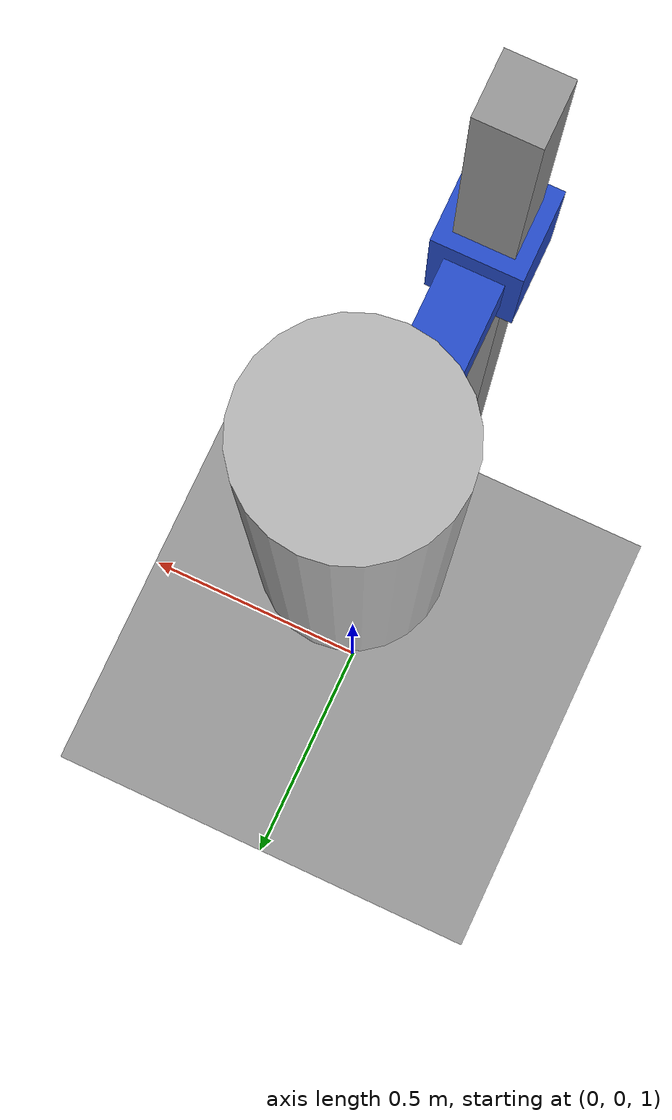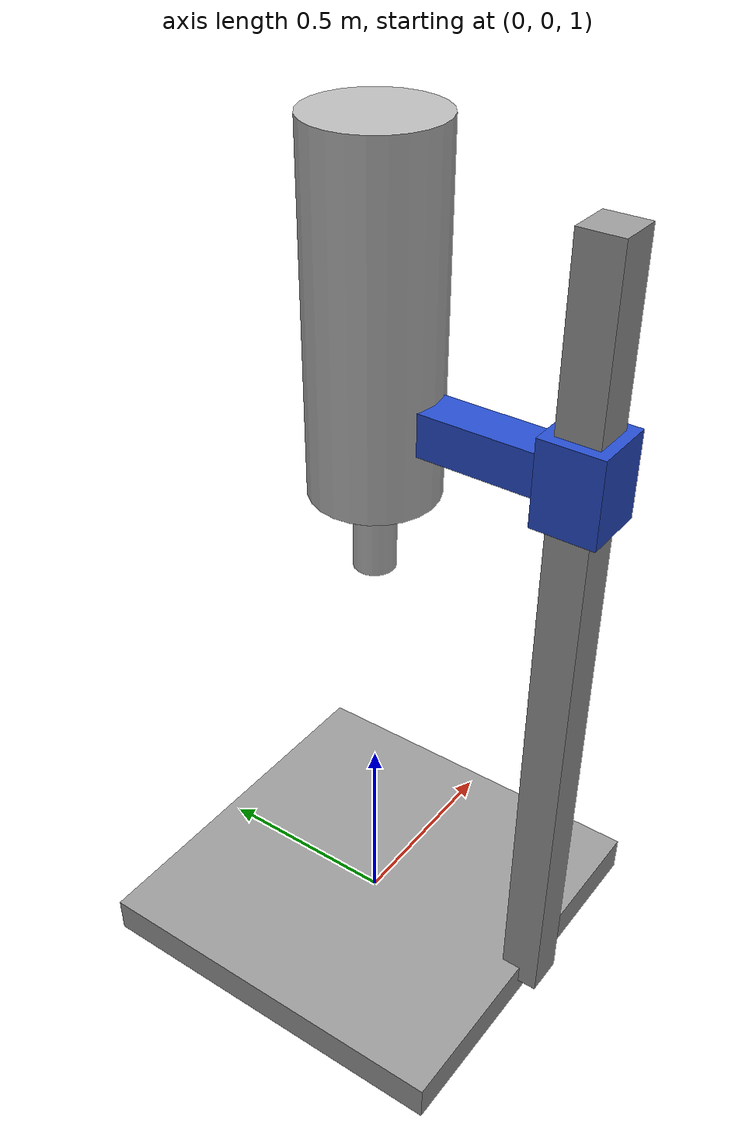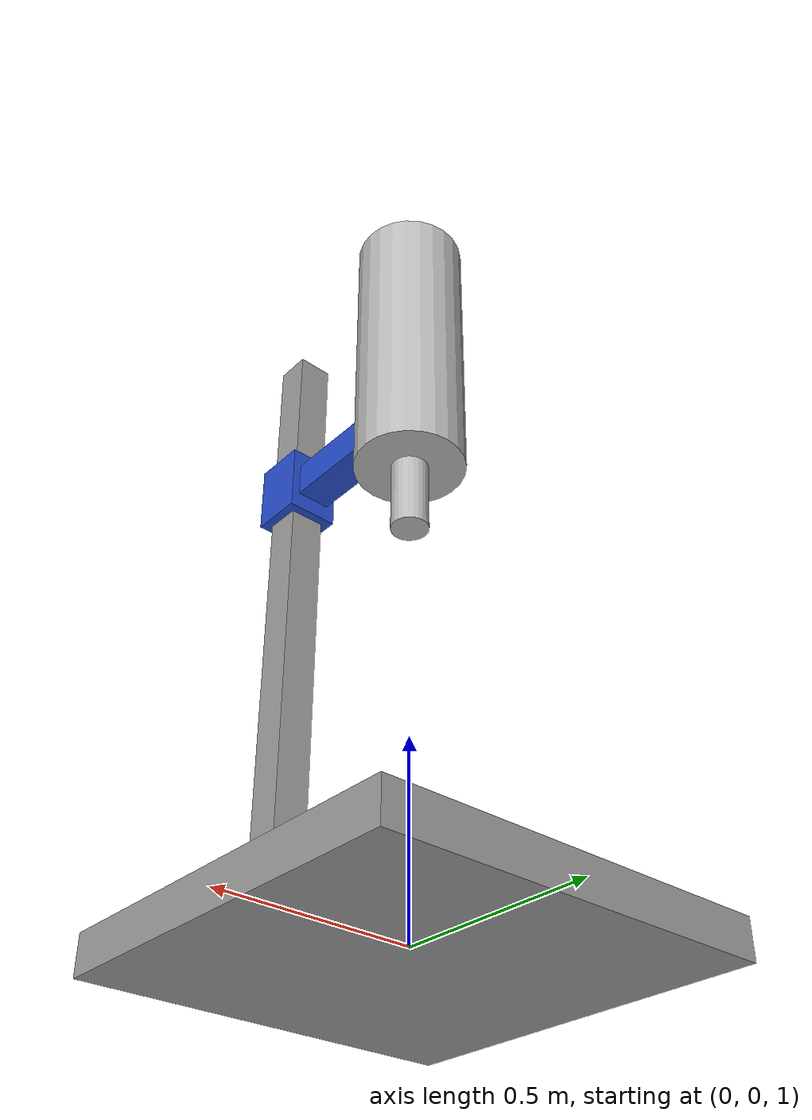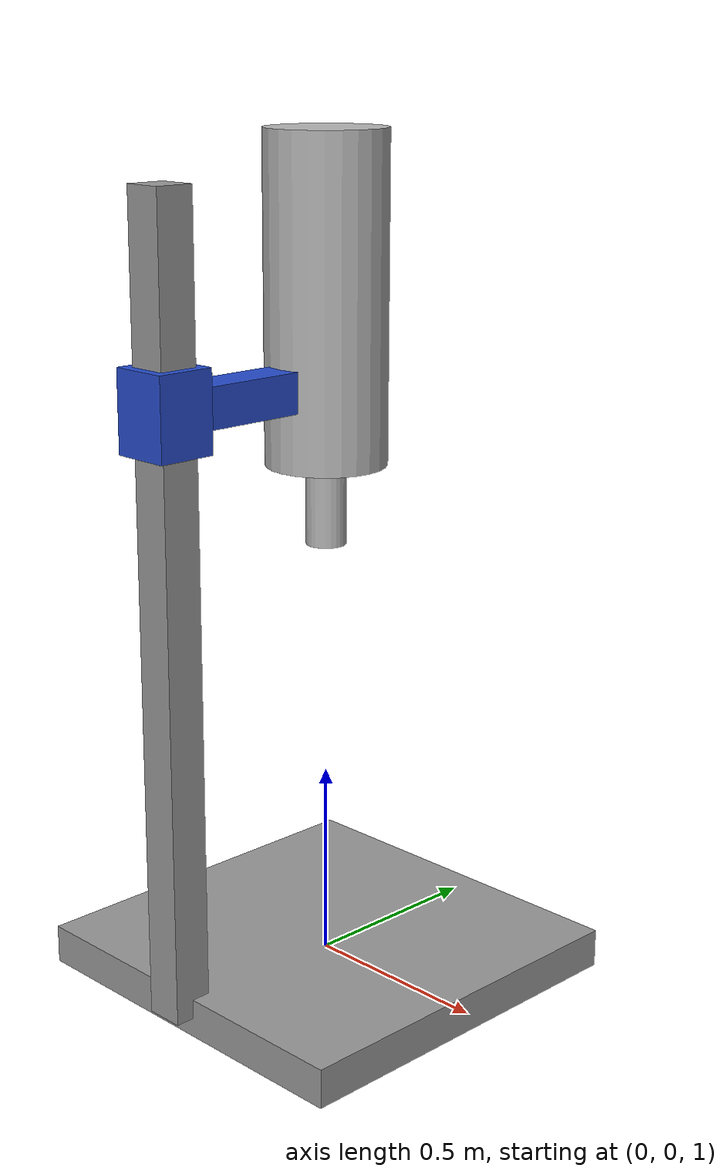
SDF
<sdf version='1.7'>
  <model name='rocket'>
    <link name='base_station'>
      <inertial>
        <pose>0 0 0 0 -0 0</pose>
        <mass>5000</mass>
        <inertia>
          <ixx>421.708</ixx>
          <ixy>0</ixy>
          <ixz>0</ixz>
          <iyy>421.708</iyy>
          <iyz>0</iyz>
          <izz>833.333</izz>
        </inertia>
      </inertial>
      <collision name='base_station_collision'>
        <pose>0 0 0 0 -0 0</pose>
        <geometry>
          <box>
            <size>1 1 0.01</size>
          </box>
        </geometry>
        <surface>
          <contact>
            <ode/>
          </contact>
          <friction>
            <ode/>
          </friction>
        </surface>
      </collision>
      <visual name='base_station_visual'>
        <pose>0 0 0 0 -0 0</pose>
        <geometry>
          <box>
            <size>1 1 0.1</size>
          </box>
        </geometry>
        <material>
          <script>
            <name>Gazebo/Grey</name>
            <uri>file://media/materials/scripts/gazebo.material</uri>
          </script>
        </material>
      </visual>
      <visual name='base_station_visual_1'>
        <pose>0 -0.5 1 0 -0 0</pose>
        <geometry>
          <box>
            <size>0.1 0.1 2</size>
          </box>
        </geometry>
        <material>
          <script>
            <name>Gazebo/Grey</name>
            <uri>file://media/materials/scripts/gazebo.material</uri>
          </script>
        </material>
      </visual>
    </link>
    <joint name='moving_station_joint' type='prismatic'>
      <pose relative_to='base_station'>0 -0.5 1.5 0 -0 0</pose>
      <parent>base_station</parent>
      <child>moving_station</child>
      <axis>
        <xyz>0 0 1</xyz>
        <limit>
          <lower>-0.5</lower>
          <upper>0.5</upper>
          <effort>3000</effort>
          <velocity>1</velocity>
        </limit>
        <dynamics>
          <damping>0.01</damping>
          <friction>0.01</friction>
          <spring_reference>0</spring_reference>
          <spring_stiffness>0</spring_stiffness>
        </dynamics>
      </axis>
    </joint>
    <link name='moving_station'>
      <pose relative_to='moving_station_joint'>0 0 0 0 -0 0</pose>
      <inertial>
        <pose>0 0 0 0 -0 0</pose>
        <mass>20</mass>
        <inertia>
          <ixx>0.433333</ixx>
          <ixy>0</ixy>
          <ixz>0</ixz>
          <iyy>0.0333333</iyy>
          <iyz>0</iyz>
          <izz>0.433333</izz>
        </inertia>
      </inertial>
      <collision name='moving_station_collision'>
        <pose>0 0.25 0 0 -0 0</pose>
        <geometry>
          <box>
            <size>0.1 0.5 0.1</size>
          </box>
        </geometry>
        <surface>
          <contact>
            <ode/>
          </contact>
          <friction>
            <ode/>
          </friction>
        </surface>
      </collision>
      <visual name='moving_station_visual'>
        <pose>0 0 0 0 -0 0</pose>
        <geometry>
          <box>
            <size>0.15 0.15 0.2</size>
          </box>
        </geometry>
        <material>
          <script>
            <name>Gazebo/Blue</name>
            <uri>file://media/materials/scripts/gazebo.material</uri>
          </script>
        </material>
      </visual>
      <visual name='moving_station_visual_1'>
        <pose>0 0.25 0 0 -0 0</pose>
        <geometry>
          <box>
            <size>0.1 0.5 0.1</size>
          </box>
        </geometry>
        <material>
          <script>
            <name>Gazebo/Blue</name>
            <uri>file://media/materials/scripts/gazebo.material</uri>
          </script>
        </material>
      </visual>
    </link>
    <joint name='station_to_rocket' type='revolute'>
      <pose relative_to='moving_station'>0 0.5 0 0 -0 0</pose>
      <parent>moving_station</parent>
      <child>base_link</child>
      <axis>
        <xyz>0 1 0</xyz>
        <limit>
          <lower>-1</lower>
          <upper>1</upper>
          <effort>100000</effort>
          <velocity>5</velocity>
        </limit>
        <dynamics>
          <damping>0.03</damping>
          <friction>0.03</friction>
          <spring_reference>0</spring_reference>
          <spring_stiffness>0</spring_stiffness>
        </dynamics>
      </axis>
    </joint>
    <link name='base_link'>
      <pose relative_to='station_to_rocket'>0 0 0 0 -0 0</pose>
      <inertial>
        <pose>0 0 0 0 -0 0</pose>
        <mass>10</mass>
        <inertia>
          <ixx>0.520833</ixx>
          <ixy>0</ixy>
          <ixz>0</ixz>
          <iyy>0.520833</iyy>
          <iyz>0</iyz>
          <izz>0.104167</izz>
        </inertia>
      </inertial>
      <collision name='base_link_collision'>
        <pose>0 0 0.2 0 -0 0</pose>
        <geometry>
          <cylinder>
            <length>0.8</length>
            <radius>0.15</radius>
          </cylinder>
        </geometry>
      </collision>
      <visual name='base_link_visual'>
        <pose>0 0 0.2 0 -0 0</pose>
        <geometry>
          <cylinder>
            <length>0.8</length>
            <radius>0.15</radius>
          </cylinder>
        </geometry>
      </visual>
    </link>
    <joint name='thruster_pitch_joint' type='revolute'>
      <pose relative_to='base_link'>0 0 -0.2 0 -0 0</pose>
      <parent>base_link</parent>
      <child>yaw_link</child>
      <axis>
        <xyz>1 0 0</xyz>
        <limit>
          <lower>-0.01</lower>
          <upper>0.01</upper>
          <effort>100</effort>
          <velocity>0.5</velocity>
        </limit>
        <dynamics>
          <damping>100</damping>
          <friction>100</friction>
          <spring_reference>0</spring_reference>
          <spring_stiffness>0</spring_stiffness>
        </dynamics>
      </axis>
    </joint>
    <link name='yaw_link'>
      <pose relative_to='thruster_pitch_joint'>0 0 0 0 -0 0</pose>
      <inertial>
        <pose>0 0 0 0 -0 0</pose>
        <mass>0.3</mass>
        <inertia>
          <ixx>5e-06</ixx>
          <ixy>0</ixy>
          <ixz>0</ixz>
          <iyy>5e-06</iyy>
          <iyz>0</iyz>
          <izz>5e-06</izz>
        </inertia>
      </inertial>
      <collision name='yaw_link_collision'>
        <pose>0 0 0 0 -0 0</pose>
        <geometry>
          <box>
            <size>0.001 0.001 0.001</size>
          </box>
        </geometry>
      </collision>
      <visual name='yaw_link_visual'>
        <pose>0 0 0 0 -0 0</pose>
        <geometry>
          <box>
            <size>0.01 0.01 0.01</size>
          </box>
        </geometry>
      </visual>
    </link>
    <joint name='thruster_yaw_joint' type='revolute'>
      <pose relative_to='yaw_link'>0 0 0 0 -0 0</pose>
      <parent>yaw_link</parent>
      <child>thruster</child>
      <axis>
        <xyz>0 1 0</xyz>
        <limit>
          <lower>-2</lower>
          <upper>2</upper>
          <effort>10000</effort>
          <velocity>5</velocity>
        </limit>
        <dynamics>
          <damping>0.5</damping>
          <friction>0.5</friction>
          <spring_reference>0</spring_reference>
          <spring_stiffness>0</spring_stiffness>
        </dynamics>
      </axis>
    </joint>
    <link name='thruster'>
      <pose relative_to='thruster_yaw_joint'>0 0 0 0 -0 0</pose>
      <inertial>
        <pose>0 0 0 0 -0 0</pose>
        <mass>0.3</mass>
        <inertia>
          <ixx>5e-06</ixx>
          <ixy>0</ixy>
          <ixz>0</ixz>
          <iyy>5e-06</iyy>
          <iyz>0</iyz>
          <izz>5e-06</izz>
        </inertia>
      </inertial>
      <collision name='thruster_collision'>
        <pose>0 0 -0.1 0 -0 0</pose>
        <geometry>
          <cylinder>
            <length>0.2</length>
            <radius>0.05</radius>
          </cylinder>
        </geometry>
      </collision>
      <visual name='thruster_visual'>
        <pose>0 0 -0.1 0 -0 0</pose>
        <geometry>
          <cylinder>
            <length>0.2</length>
            <radius>0.05</radius>
          </cylinder>
        </geometry>
      </visual>
    </link>
    <plugin name='force_plugin' filename='libforce_plugin.so'/>
    <plugin name='imu_plugin' filename='libgazebo_ros_imu.so'>
      <alwaysOn>1</alwaysOn>
      <bodyName>base_link</bodyName>
      <topicName>imu</topicName>
      <serviceName>imu_service</serviceName>
      <gaussianNoise>0.0</gaussianNoise>
      <updateRate>20.0</updateRate>
    </plugin>
    <plugin name='gazebo_ros_control' filename='libgazebo_ros_control.so'>
      <robotNamespace>/rocket_sim</robotNamespace>
      <robotSimType>gazebo_ros_control/DefaultRobotHWSim</robotSimType>
    </plugin>
    <pose>0 0 1 0 -0 0</pose>
  </model>
</sdf>
